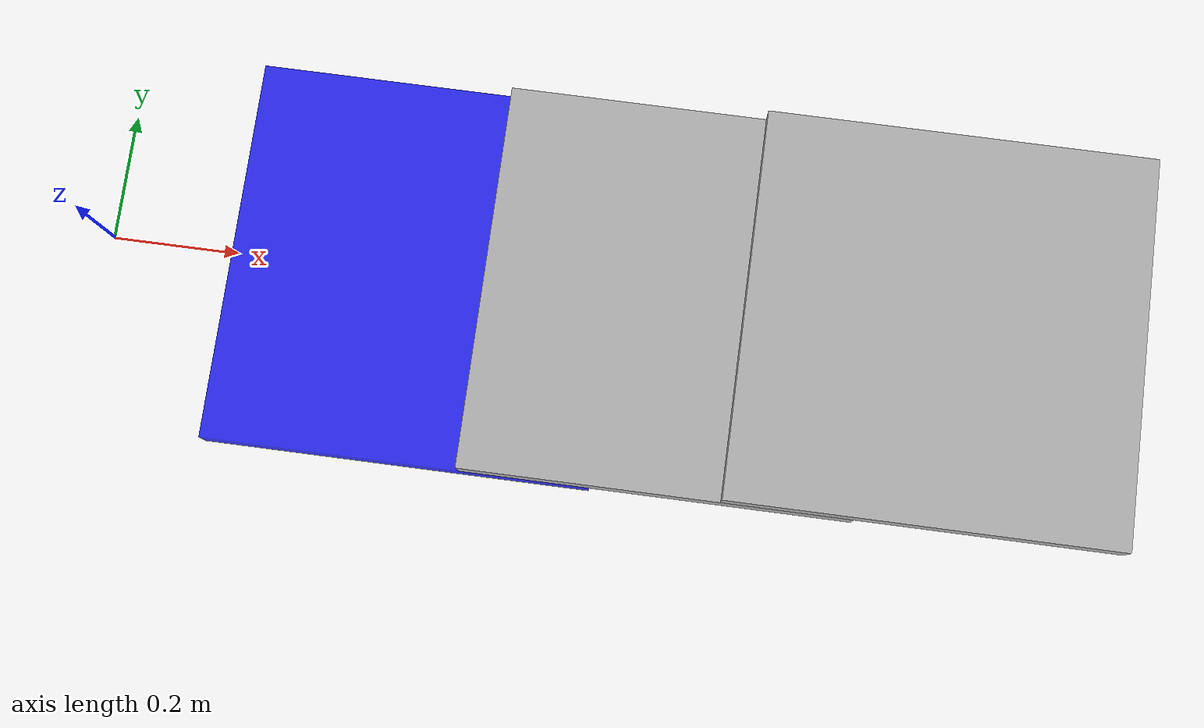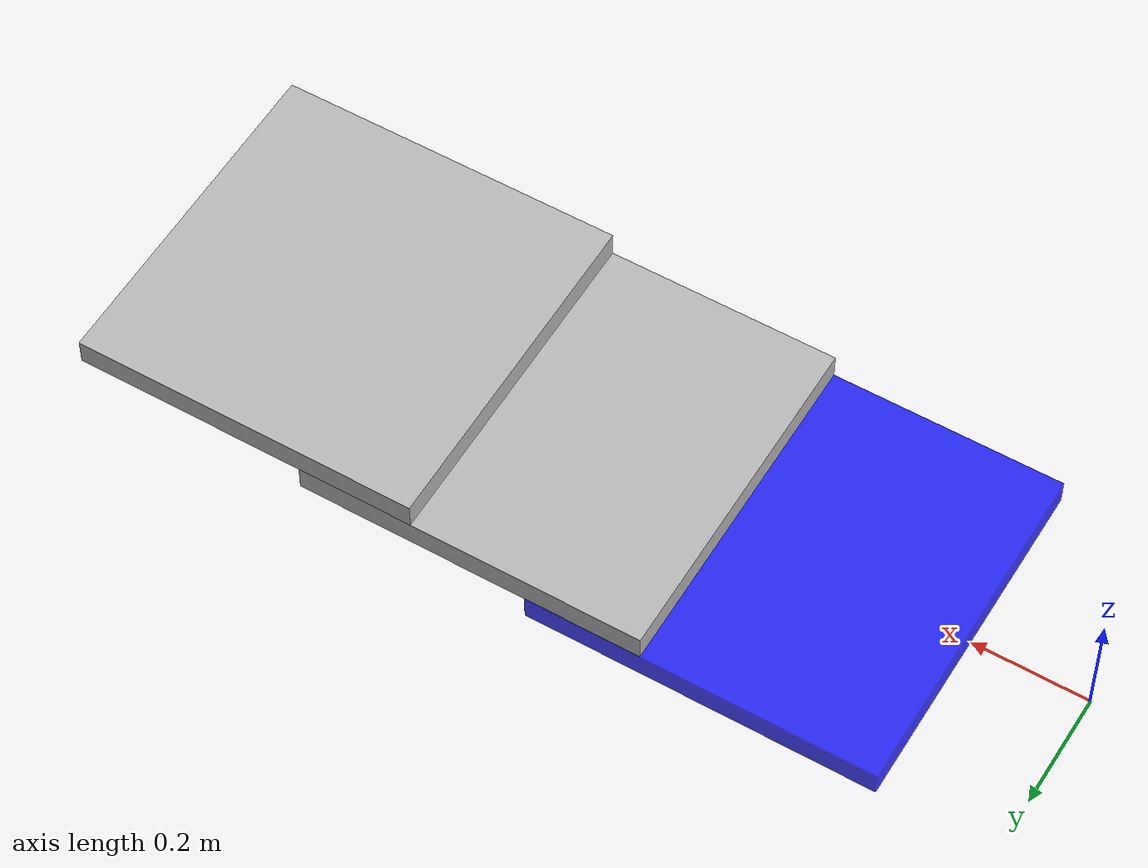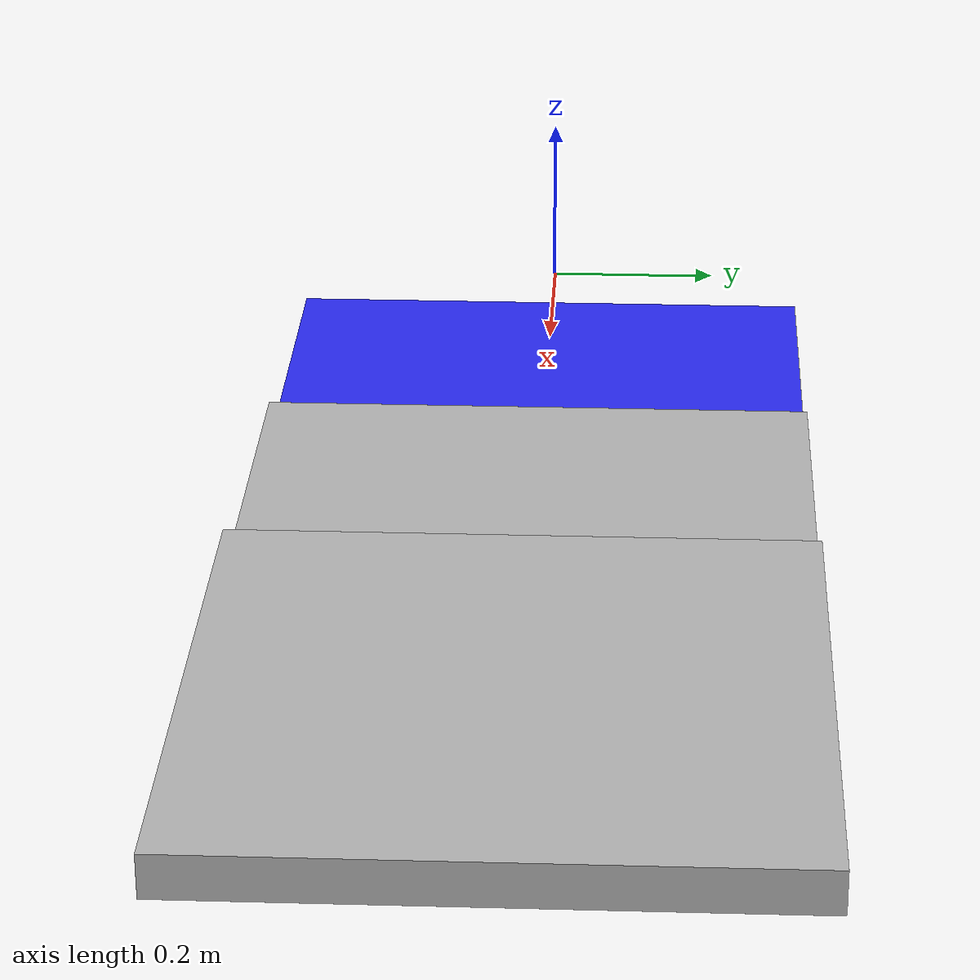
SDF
<sdf version='1.4'>
  <world name='terrain'>

    <model name='Box01'>
      <pose>0.5 0.0 0.0225 0 0 0</pose>
      <link name='Box01'>
        <pose>0 0 0 0 0 0</pose>
        <collision name='collision'>
          <geometry>
            <box>
              <size>0.6 0.6 0.045</size>
            </box>
          </geometry>
        </collision>
        <visual name='visual'>
          <geometry>
            <box>
              <size>0.6 0.6 0.045</size>
            </box>
          </geometry>
          <material>
            <diffuse>0 0 1 .8</diffuse>
            <ambient>0 0 1 .8</ambient>
          </material>
        </visual>
      </link>
      <static>1</static>
    </model>

    <model name='Box02'>
      <pose>0.9 0.0 0.0675 0 0 0</pose>
      <link name='Box02'>
        <pose>0 0 0 0 0 0</pose>
        <collision name='collision'>
          <geometry>
            <box>
              <size>0.6 0.6 0.045</size>
            </box>
          </geometry>
        </collision>
        <visual name='visual'>
          <geometry>
            <box>
              <size>0.6 0.6 0.045</size>
            </box>
          </geometry>
        </visual>
      </link>
      <static>1</static>
    </model>

    <model name='Box03'>
      <pose>1.3 0.0 0.1125 0 0 0</pose>
      <link name='Box03'>
        <pose>0 0 0 0 0 0</pose>
        <collision name='collision'>
          <geometry>
            <box>
              <size>0.6 0.6 0.045</size>
            </box>
          </geometry>
        </collision>
        <visual name='visual'>
          <geometry>
            <box>
              <size>0.6 0.6 0.045</size>
            </box>
          </geometry>
        </visual>
      </link>
      <static>1</static>
    </model>

  </world>
</sdf>
